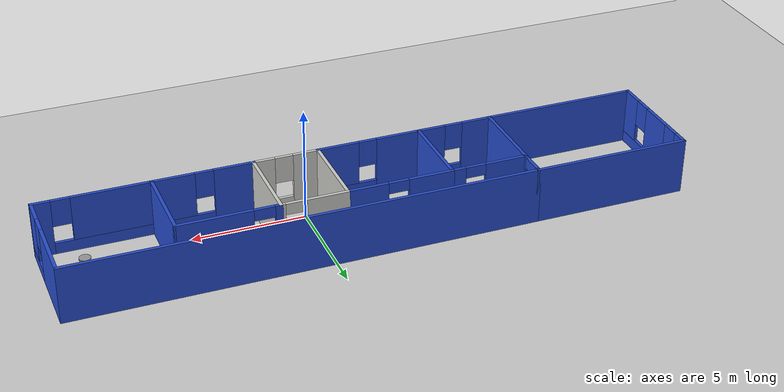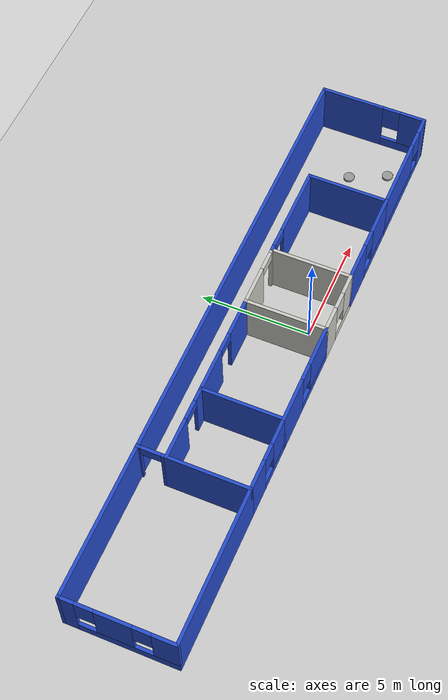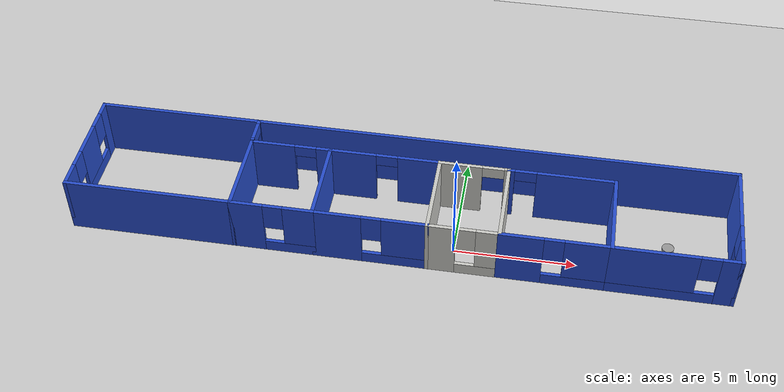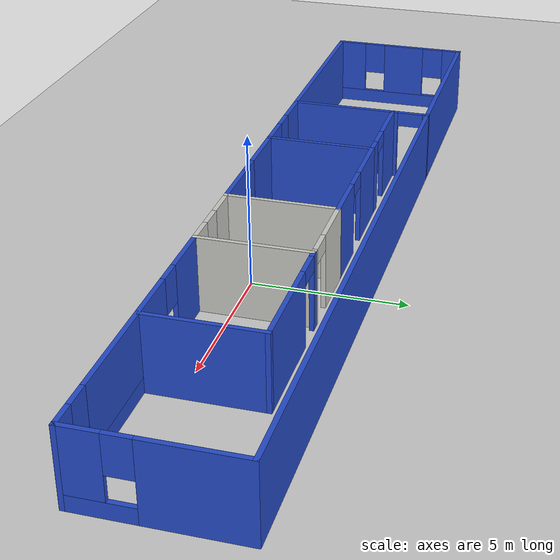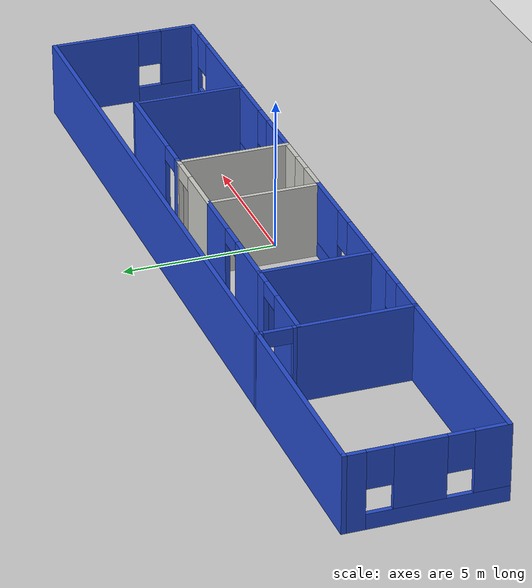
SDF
<sdf version="1.7">
 <world name="default">
  <plugin name="welcome_message" filename="libwelcome_message.so"/>
  <light name="sun" type="directional">
   <pose>0 0 10 0 -0 0</pose>
   <diffuse>0.8 0.8 0.8 1</diffuse>
   <specular>0.2 0.2 0.2 1</specular>
   <attenuation>
    <range>1000</range>
    <constant>0.9</constant>
    <linear>0.01</linear>
    <quadratic>0.001</quadratic>
   </attenuation>
   <direction>-0.5 0.1 -0.9</direction>
   <spot><inner_angle>0</inner_angle><outer_angle>0</outer_angle><falloff>0</falloff></spot>
  </light>
  <model name="ground_plane">
   <static>1</static>
   <link name="link">
    <collision name="collision">
     <geometry><plane><normal>0 0 1</normal><size>100 100</size></plane></geometry>
     <surface>
      <contact><collide_bitmask>65535</collide_bitmask></contact>
      <friction><ode><mu>100</mu><mu2>50</mu2></ode></friction>
     </surface>
    </collision>
    <visual name="visual">
     <cast_shadows>0</cast_shadows>
     <geometry><plane><normal>0 0 1</normal><size>100 100</size></plane></geometry>
     <material>
      <script><uri>file://media/materials/scripts/gazebo.material</uri><name>Gazebo/Grey</name></script>
     </material>
    </visual>
   </link>
  </model>
  <gravity>0 0 -9.8</gravity>
  <magnetic_field>6e-06 2.3e-05 -4.2e-05</magnetic_field>
  <atmosphere type="adiabatic"/>
  <physics type="ode">
   <max_step_size>0.001</max_step_size>
   <real_time_factor>1</real_time_factor>
   <real_time_update_rate>1000</real_time_update_rate>
  </physics>
  <scene><ambient>0.4 0.4 0.4 1</ambient><background>0.7 0.7 0.7 1</background><shadows>1</shadows></scene>
  <spherical_coordinates>
   <surface_model>EARTH_WGS84</surface_model>
   <latitude_deg>0</latitude_deg>
   <longitude_deg>0</longitude_deg>
   <elevation>0</elevation>
   <heading_deg>0</heading_deg>
  </spherical_coordinates>
  <model name="1147G">
   <pose>-2.2869 -0.25 0 0 -0 0</pose>
   <link name="Wall_11">
    <collision name="Wall_11_Collision">
     <geometry><box><size>7 0.15 2.5</size></box></geometry>
     <pose>0 0 1.25 0 -0 0</pose>
    </collision>
    <visual name="Wall_11_Visual">
     <pose>0 0 1.25 0 -0 0</pose>
     <geometry><box><size>7 0.15 2.5</size></box></geometry>
     <material>
      <script><uri>file://media/materials/scripts/gazebo.material</uri><name>Gazebo/Blue</name></script>
      <ambient>1 1 1 1</ambient>
     </material>
     <meta><layer>0</layer></meta>
    </visual>
    <pose>-10.05 4.0301 0 0 -0 0</pose>
   </link>
   <link name="Wall_14">
    <pose>-13.475 1.6051 0 0 -0 -1.5708</pose>
    <visual name="Wall_14_Visual_0">
     <pose>-2.13974 0 1.25 0 -0 0</pose>
     <geometry><box><size>0.720511 0.15 2.5</size></box></geometry>
     <material>
      <script><uri>file://media/materials/scripts/gazebo.material</uri><name>Gazebo/Blue</name></script>
      <ambient>1 1 1 1</ambient>
     </material>
     <meta><layer>0</layer></meta>
    </visual>
    <collision name="Wall_14_Collision_0">
     <geometry><box><size>0.720511 0.15 2.5</size></box></geometry>
     <pose>-2.13974 0 1.25 0 -0 0</pose>
    </collision>
    <visual name="Wall_14_Visual_1">
     <pose>0.360256 0 0.25 0 -0 0</pose>
     <geometry><box><size>4.27949 0.15 0.5</size></box></geometry>
     <material>
      <script><uri>file://media/materials/scripts/gazebo.material</uri><name>Gazebo/Blue</name></script>
      <ambient>1 1 1 1</ambient>
     </material>
     <meta><layer>0</layer></meta>
    </visual>
    <collision name="Wall_14_Collision_1">
     <geometry><box><size>4.27949 0.15 0.5</size></box></geometry>
     <pose>0.360256 0 0.25 0 -0 0</pose>
    </collision>
    <visual name="Wall_14_Visual_2">
     <pose>-0.192788 0 1.5 0 -0 0</pose>
     <geometry><box><size>1.5734 0.15 2</size></box></geometry>
     <material>
      <script><uri>file://media/materials/scripts/gazebo.material</uri><name>Gazebo/Blue</name></script>
      <ambient>1 1 1 1</ambient>
     </material>
     <meta><layer>0</layer></meta>
    </visual>
    <collision name="Wall_14_Collision_2">
     <geometry><box><size>1.5734 0.15 2</size></box></geometry>
     <pose>-0.192788 0 1.5 0 -0 0</pose>
    </collision>
    <visual name="Wall_14_Visual_3">
     <pose>1.94696 0 1.5 0 -0 0</pose>
     <geometry><box><size>1.10609 0.15 2</size></box></geometry>
     <material>
      <script><uri>file://media/materials/scripts/gazebo.material</uri><name>Gazebo/Blue</name></script>
      <ambient>1 1 1 1</ambient>
     </material>
     <meta><layer>0</layer></meta>
    </visual>
    <collision name="Wall_14_Collision_3">
     <geometry><box><size>1.10609 0.15 2</size></box></geometry>
     <pose>1.94696 0 1.5 0 -0 0</pose>
    </collision>
    <visual name="Wall_14_Visual_4">
     <pose>-1.37949 0 1.9 0 -0 0</pose>
     <geometry><box><size>0.8 0.15 1.2</size></box></geometry>
     <material>
      <script><uri>file://media/materials/scripts/gazebo.material</uri><name>Gazebo/Blue</name></script>
      <ambient>1 1 1 1</ambient>
     </material>
     <meta><layer>0</layer></meta>
    </visual>
    <collision name="Wall_14_Collision_4">
     <geometry><box><size>0.8 0.15 1.2</size></box></geometry>
     <pose>-1.37949 0 1.9 0 -0 0</pose>
    </collision>
    <visual name="Wall_14_Visual_5">
     <pose>0.993912 0 1.9 0 -0 0</pose>
     <geometry><box><size>0.8 0.15 1.2</size></box></geometry>
     <material>
      <script><uri>file://media/materials/scripts/gazebo.material</uri><name>Gazebo/Blue</name></script>
      <ambient>1 1 1 1</ambient>
     </material>
     <meta><layer>0</layer></meta>
    </visual>
    <collision name="Wall_14_Collision_5">
     <geometry><box><size>0.8 0.15 1.2</size></box></geometry>
     <pose>0.993912 0 1.9 0 -0 0</pose>
    </collision>
   </link>
   <link name="Wall_15">
    <collision name="Wall_15_Collision">
     <geometry><box><size>7 0.15 2.5</size></box></geometry>
     <pose>0 0 1.25 0 -0 0</pose>
    </collision>
    <visual name="Wall_15_Visual">
     <pose>0 0 1.25 0 -0 0</pose>
     <geometry><box><size>7 0.15 2.5</size></box></geometry>
     <material>
      <script><uri>file://media/materials/scripts/gazebo.material</uri><name>Gazebo/Blue</name></script>
      <ambient>1 1 1 1</ambient>
     </material>
     <meta><layer>0</layer></meta>
    </visual>
    <pose>-10.05 -0.819903 0 0 -0 0</pose>
   </link>
   <link name="Wall_16">
    <collision name="Wall_16_Collision">
     <geometry><box><size>3.75 0.15 2.5</size></box></geometry>
     <pose>0 0 1.25 0 -0 0</pose>
    </collision>
    <visual name="Wall_16_Visual">
     <pose>0 0 1.25 0 -0 0</pose>
     <geometry><box><size>3.75 0.15 2.5</size></box></geometry>
     <material>
      <script><uri>file://media/materials/scripts/gazebo.material</uri><name>Gazebo/Blue</name></script>
      <ambient>1 1 1 1</ambient>
     </material>
     <meta><layer>0</layer></meta>
    </visual>
    <pose>-6.625 0.980097 0 0 -0 1.5708</pose>
   </link>
   <link name="Wall_18">
    <pose>-4.95 -0.819903 0 0 -0 0</pose>
    <visual name="Wall_18_Visual_0">
     <pose>-1.04538 0 1.25 0 -0 0</pose>
     <geometry><box><size>1.40924 0.15 2.5</size></box></geometry>
     <material>
      <script><uri>file://media/materials/scripts/gazebo.material</uri><name>Gazebo/Blue</name></script>
      <ambient>1 1 1 1</ambient>
     </material>
     <meta><layer>0</layer></meta>
    </visual>
    <collision name="Wall_18_Collision_0">
     <geometry><box><size>1.40924 0.15 2.5</size></box></geometry>
     <pose>-1.04538 0 1.25 0 -0 0</pose>
    </collision>
    <visual name="Wall_18_Visual_1">
     <pose>0.704619 0 0.25 0 -0 0</pose>
     <geometry><box><size>2.09076 0.15 0.5</size></box></geometry>
     <material>
      <script><uri>file://media/materials/scripts/gazebo.material</uri><name>Gazebo/Blue</name></script>
      <ambient>1 1 1 1</ambient>
     </material>
     <meta><layer>0</layer></meta>
    </visual>
    <collision name="Wall_18_Collision_1">
     <geometry><box><size>2.09076 0.15 0.5</size></box></geometry>
     <pose>0.704619 0 0.25 0 -0 0</pose>
    </collision>
    <visual name="Wall_18_Visual_2">
     <pose>1.10462 0 1.5 0 -0 0</pose>
     <geometry><box><size>1.29076 0.15 2</size></box></geometry>
     <material>
      <script><uri>file://media/materials/scripts/gazebo.material</uri><name>Gazebo/Blue</name></script>
      <ambient>1 1 1 1</ambient>
     </material>
     <meta><layer>0</layer></meta>
    </visual>
    <collision name="Wall_18_Collision_2">
     <geometry><box><size>1.29076 0.15 2</size></box></geometry>
     <pose>1.10462 0 1.5 0 -0 0</pose>
    </collision>
    <visual name="Wall_18_Visual_3">
     <pose>0.059238 0 1.9 0 -0 0</pose>
     <geometry><box><size>0.8 0.15 1.2</size></box></geometry>
     <material>
      <script><uri>file://media/materials/scripts/gazebo.material</uri><name>Gazebo/Blue</name></script>
      <ambient>1 1 1 1</ambient>
     </material>
     <meta><layer>0</layer></meta>
    </visual>
    <collision name="Wall_18_Collision_3">
     <geometry><box><size>0.8 0.15 1.2</size></box></geometry>
     <pose>0.059238 0 1.9 0 -0 0</pose>
    </collision>
   </link>
   <link name="Wall_19">
    <collision name="Wall_19_Collision">
     <geometry><box><size>3.75 0.15 2.5</size></box></geometry>
     <pose>0 0 1.25 0 -0 0</pose>
    </collision>
    <visual name="Wall_19_Visual">
     <pose>0 0 1.25 0 -0 0</pose>
     <geometry><box><size>3.75 0.15 2.5</size></box></geometry>
     <material>
      <script><uri>file://media/materials/scripts/gazebo.material</uri><name>Gazebo/Blue</name></script>
      <ambient>1 1 1 1</ambient>
     </material>
     <meta><layer>0</layer></meta>
    </visual>
    <pose>-3.275 0.980097 0 0 -0 1.5708</pose>
   </link>
   <link name="Wall_21">
    <pose>-0.975 -0.819903 0 0 -0 0</pose>
    <visual name="Wall_21_Visual_0">
     <pose>-1.35414 0 1.25 0 -0 0</pose>
     <geometry><box><size>2.04173 0.15 2.5</size></box></geometry>
     <material>
      <script><uri>file://media/materials/scripts/gazebo.material</uri><name>Gazebo/Blue</name></script>
      <ambient>1 1 1 1</ambient>
     </material>
     <meta><layer>0</layer></meta>
    </visual>
    <collision name="Wall_21_Collision_0">
     <geometry><box><size>2.04173 0.15 2.5</size></box></geometry>
     <pose>-1.35414 0 1.25 0 -0 0</pose>
    </collision>
    <visual name="Wall_21_Visual_1">
     <pose>1.02086 0 0.25 0 -0 0</pose>
     <geometry><box><size>2.70827 0.15 0.5</size></box></geometry>
     <material>
      <script><uri>file://media/materials/scripts/gazebo.material</uri><name>Gazebo/Blue</name></script>
      <ambient>1 1 1 1</ambient>
     </material>
     <meta><layer>0</layer></meta>
    </visual>
    <collision name="Wall_21_Collision_1">
     <geometry><box><size>2.70827 0.15 0.5</size></box></geometry>
     <pose>1.02086 0 0.25 0 -0 0</pose>
    </collision>
    <visual name="Wall_21_Visual_2">
     <pose>1.42086 0 1.5 0 -0 0</pose>
     <geometry><box><size>1.90827 0.15 2</size></box></geometry>
     <material>
      <script><uri>file://media/materials/scripts/gazebo.material</uri><name>Gazebo/Blue</name></script>
      <ambient>1 1 1 1</ambient>
     </material>
     <meta><layer>0</layer></meta>
    </visual>
    <collision name="Wall_21_Collision_2">
     <geometry><box><size>1.90827 0.15 2</size></box></geometry>
     <pose>1.42086 0 1.5 0 -0 0</pose>
    </collision>
    <visual name="Wall_21_Visual_3">
     <pose>0.066725 0 1.9 0 -0 0</pose>
     <geometry><box><size>0.8 0.15 1.2</size></box></geometry>
     <material>
      <script><uri>file://media/materials/scripts/gazebo.material</uri><name>Gazebo/Blue</name></script>
      <ambient>1 1 1 1</ambient>
     </material>
     <meta><layer>0</layer></meta>
    </visual>
    <collision name="Wall_21_Collision_3">
     <geometry><box><size>0.8 0.15 1.2</size></box></geometry>
     <pose>0.066725 0 1.9 0 -0 0</pose>
    </collision>
   </link>
   <link name="Wall_22">
    <collision name="Wall_22_Collision">
     <geometry><box><size>3.75 0.15 2.5</size></box></geometry>
     <pose>0 0 1.25 0 -0 0</pose>
    </collision>
    <visual name="Wall_22_Visual">
     <pose>0 0 1.25 0 -0 0</pose>
     <geometry><box><size>3.75 0.15 2.5</size></box></geometry>
     <material>
      <script><uri>file://media/materials/scripts/gazebo.material</uri><name>Gazebo/CeilingTiled</name></script>
      <ambient>1 1 1 1</ambient>
     </material>
     <meta><layer>0</layer></meta>
    </visual>
    <pose>1.325 0.980097 0 0 -0 1.5708</pose>
   </link>
   <link name="Wall_24">
    <pose>2.75 -0.819903 0 0 -0 0</pose>
    <visual name="Wall_24_Visual_0">
     <pose>-0.898519 0 1.25 0 -0 0</pose>
     <geometry><box><size>1.20296 0.15 2.5</size></box></geometry>
     <material>
      <script><uri>file://media/materials/scripts/gazebo.material</uri><name>Gazebo/CeilingTiled</name></script>
      <ambient>1 1 1 1</ambient>
     </material>
     <meta><layer>0</layer></meta>
    </visual>
    <collision name="Wall_24_Collision_0">
     <geometry><box><size>1.20296 0.15 2.5</size></box></geometry>
     <pose>-0.898519 0 1.25 0 -0 0</pose>
    </collision>
    <visual name="Wall_24_Visual_1">
     <pose>0.601481 0 0.25 0 -0 0</pose>
     <geometry><box><size>1.79704 0.15 0.5</size></box></geometry>
     <material>
      <script><uri>file://media/materials/scripts/gazebo.material</uri><name>Gazebo/CeilingTiled</name></script>
      <ambient>1 1 1 1</ambient>
     </material>
     <meta><layer>0</layer></meta>
    </visual>
    <collision name="Wall_24_Collision_1">
     <geometry><box><size>1.79704 0.15 0.5</size></box></geometry>
     <pose>0.601481 0 0.25 0 -0 0</pose>
    </collision>
    <visual name="Wall_24_Visual_2">
     <pose>1.00148 0 1.5 0 -0 0</pose>
     <geometry><box><size>0.997037 0.15 2</size></box></geometry>
     <material>
      <script><uri>file://media/materials/scripts/gazebo.material</uri><name>Gazebo/CeilingTiled</name></script>
      <ambient>1 1 1 1</ambient>
     </material>
     <meta><layer>0</layer></meta>
    </visual>
    <collision name="Wall_24_Collision_2">
     <geometry><box><size>0.997037 0.15 2</size></box></geometry>
     <pose>1.00148 0 1.5 0 -0 0</pose>
    </collision>
    <visual name="Wall_24_Visual_3">
     <pose>0.102963 0 1.9 0 -0 0</pose>
     <geometry><box><size>0.8 0.15 1.2</size></box></geometry>
     <material>
      <script><uri>file://media/materials/scripts/gazebo.material</uri><name>Gazebo/CeilingTiled</name></script>
      <ambient>1 1 1 1</ambient>
     </material>
     <meta><layer>0</layer></meta>
    </visual>
    <collision name="Wall_24_Collision_3">
     <geometry><box><size>0.8 0.15 1.2</size></box></geometry>
     <pose>0.102963 0 1.9 0 -0 0</pose>
    </collision>
   </link>
   <link name="Wall_25">
    <collision name="Wall_25_Collision">
     <geometry><box><size>3.75 0.15 2.5</size></box></geometry>
     <pose>0 0 1.25 0 -0 0</pose>
    </collision>
    <visual name="Wall_25_Visual">
     <pose>0 0 1.25 0 -0 0</pose>
     <geometry><box><size>3.75 0.15 2.5</size></box></geometry>
     <material>
      <script><uri>file://media/materials/scripts/gazebo.material</uri><name>Gazebo/CeilingTiled</name></script>
      <ambient>1 1 1 1</ambient>
     </material>
     <meta><layer>0</layer></meta>
    </visual>
    <pose>4.175 0.980097 0 0 -0 1.5708</pose>
   </link>
   <link name="Wall_27">
    <pose>6.35 -0.819903 0 0 -0 0</pose>
    <visual name="Wall_27_Visual_0">
     <pose>-1.34375 0 1.25 0 -0 0</pose>
     <geometry><box><size>1.8125 0.15 2.5</size></box></geometry>
     <material>
      <script><uri>file://media/materials/scripts/gazebo.material</uri><name>Gazebo/Blue</name></script>
      <ambient>1 1 1 1</ambient>
     </material>
     <meta><layer>0</layer></meta>
    </visual>
    <collision name="Wall_27_Collision_0">
     <geometry><box><size>1.8125 0.15 2.5</size></box></geometry>
     <pose>-1.34375 0 1.25 0 -0 0</pose>
    </collision>
    <visual name="Wall_27_Visual_1">
     <pose>0.906249 0 0.25 0 -0 0</pose>
     <geometry><box><size>2.6875 0.15 0.5</size></box></geometry>
     <material>
      <script><uri>file://media/materials/scripts/gazebo.material</uri><name>Gazebo/Blue</name></script>
      <ambient>1 1 1 1</ambient>
     </material>
     <meta><layer>0</layer></meta>
    </visual>
    <collision name="Wall_27_Collision_1">
     <geometry><box><size>2.6875 0.15 0.5</size></box></geometry>
     <pose>0.906249 0 0.25 0 -0 0</pose>
    </collision>
    <visual name="Wall_27_Visual_2">
     <pose>1.30625 0 1.5 0 -0 0</pose>
     <geometry><box><size>1.8875 0.15 2</size></box></geometry>
     <material>
      <script><uri>file://media/materials/scripts/gazebo.material</uri><name>Gazebo/Blue</name></script>
      <ambient>1 1 1 1</ambient>
     </material>
     <meta><layer>0</layer></meta>
    </visual>
    <collision name="Wall_27_Collision_2">
     <geometry><box><size>1.8875 0.15 2</size></box></geometry>
     <pose>1.30625 0 1.5 0 -0 0</pose>
    </collision>
    <visual name="Wall_27_Visual_3">
     <pose>-0.037502 0 1.9 0 -0 0</pose>
     <geometry><box><size>0.8 0.15 1.2</size></box></geometry>
     <material>
      <script><uri>file://media/materials/scripts/gazebo.material</uri><name>Gazebo/Blue</name></script>
      <ambient>1 1 1 1</ambient>
     </material>
     <meta><layer>0</layer></meta>
    </visual>
    <collision name="Wall_27_Collision_3">
     <geometry><box><size>0.8 0.15 1.2</size></box></geometry>
     <pose>-0.037502 0 1.9 0 -0 0</pose>
    </collision>
   </link>
   <link name="Wall_28">
    <collision name="Wall_28_Collision">
     <geometry><box><size>3.75 0.15 2.5</size></box></geometry>
     <pose>0 0 1.25 0 -0 0</pose>
    </collision>
    <visual name="Wall_28_Visual">
     <pose>0 0 1.25 0 -0 0</pose>
     <geometry><box><size>3.75 0.15 2.5</size></box></geometry>
     <material>
      <script><uri>file://media/materials/scripts/gazebo.material</uri><name>Gazebo/Blue</name></script>
      <ambient>1 1 1 1</ambient>
     </material>
     <meta><layer>0</layer></meta>
    </visual>
    <pose>8.525 0.980097 0 0 -0 1.5708</pose>
   </link>
   <link name="Wall_30">
    <pose>6.35 2.7801 0 0 -0 3.14159</pose>
    <visual name="Wall_30_Visual_0">
     <pose>-0.60716 0 1.25 0 -0 0</pose>
     <geometry><box><size>3.28568 0.15 2.5</size></box></geometry>
     <material>
      <script><uri>file://media/materials/scripts/gazebo.material</uri><name>Gazebo/Blue</name></script>
      <ambient>1 1 1 1</ambient>
     </material>
     <meta><layer>0</layer></meta>
    </visual>
    <collision name="Wall_30_Collision_0">
     <geometry><box><size>3.28568 0.15 2.5</size></box></geometry>
     <pose>-0.60716 0 1.25 0 -0 0</pose>
    </collision>
    <visual name="Wall_30_Visual_1">
     <pose>2.09284 0 1.25 0 -0 0</pose>
     <geometry><box><size>0.31432 0.15 2.5</size></box></geometry>
     <material>
      <script><uri>file://media/materials/scripts/gazebo.material</uri><name>Gazebo/Blue</name></script>
      <ambient>1 1 1 1</ambient>
     </material>
     <meta><layer>0</layer></meta>
    </visual>
    <collision name="Wall_30_Collision_1">
     <geometry><box><size>0.31432 0.15 2.5</size></box></geometry>
     <pose>2.09284 0 1.25 0 -0 0</pose>
    </collision>
    <visual name="Wall_30_Visual_2">
     <pose>1.48568 0 2.25 0 -0 0</pose>
     <geometry><box><size>0.9 0.15 0.5</size></box></geometry>
     <material>
      <script><uri>file://media/materials/scripts/gazebo.material</uri><name>Gazebo/Blue</name></script>
      <ambient>1 1 1 1</ambient>
     </material>
     <meta><layer>0</layer></meta>
    </visual>
    <collision name="Wall_30_Collision_2">
     <geometry><box><size>0.9 0.15 0.5</size></box></geometry>
     <pose>1.48568 0 2.25 0 -0 0</pose>
    </collision>
   </link>
   <link name="Wall_31">
    <pose>2.75 2.7801 0 0 -0 3.14159</pose>
    <visual name="Wall_31_Visual_0">
     <pose>-1.36841 0 1.25 0 -0 0</pose>
     <geometry><box><size>0.263175 0.15 2.5</size></box></geometry>
     <material>
      <script><uri>file://media/materials/scripts/gazebo.material</uri><name>Gazebo/CeilingTiled</name></script>
      <ambient>1 1 1 1</ambient>
     </material>
     <meta><layer>0</layer></meta>
    </visual>
    <collision name="Wall_31_Collision_0">
     <geometry><box><size>0.263175 0.15 2.5</size></box></geometry>
     <pose>-1.36841 0 1.25 0 -0 0</pose>
    </collision>
    <visual name="Wall_31_Visual_1">
     <pose>0.581588 0 1.25 0 -0 0</pose>
     <geometry><box><size>1.83682 0.15 2.5</size></box></geometry>
     <material>
      <script><uri>file://media/materials/scripts/gazebo.material</uri><name>Gazebo/CeilingTiled</name></script>
      <ambient>1 1 1 1</ambient>
     </material>
     <meta><layer>0</layer></meta>
    </visual>
    <collision name="Wall_31_Collision_1">
     <geometry><box><size>1.83682 0.15 2.5</size></box></geometry>
     <pose>0.581588 0 1.25 0 -0 0</pose>
    </collision>
    <visual name="Wall_31_Visual_2">
     <pose>-0.786825 0 2.25 0 -0 0</pose>
     <geometry><box><size>0.9 0.15 0.5</size></box></geometry>
     <material>
      <script><uri>file://media/materials/scripts/gazebo.material</uri><name>Gazebo/CeilingTiled</name></script>
      <ambient>1 1 1 1</ambient>
     </material>
     <meta><layer>0</layer></meta>
    </visual>
    <collision name="Wall_31_Collision_2">
     <geometry><box><size>0.9 0.15 0.5</size></box></geometry>
     <pose>-0.786825 0 2.25 0 -0 0</pose>
    </collision>
   </link>
   <link name="Wall_32">
    <pose>-0.975 2.7801 0 0 -0 3.14159</pose>
    <visual name="Wall_32_Visual_0">
     <pose>-1.45592 0 1.25 0 -0 0</pose>
     <geometry><box><size>1.83816 0.15 2.5</size></box></geometry>
     <material>
      <script><uri>file://media/materials/scripts/gazebo.material</uri><name>Gazebo/Blue</name></script>
      <ambient>1 1 1 1</ambient>
     </material>
     <meta><layer>0</layer></meta>
    </visual>
    <collision name="Wall_32_Collision_0">
     <geometry><box><size>1.83816 0.15 2.5</size></box></geometry>
     <pose>-1.45592 0 1.25 0 -0 0</pose>
    </collision>
    <visual name="Wall_32_Visual_1">
     <pose>1.36908 0 1.25 0 -0 0</pose>
     <geometry><box><size>2.01184 0.15 2.5</size></box></geometry>
     <material>
      <script><uri>file://media/materials/scripts/gazebo.material</uri><name>Gazebo/Blue</name></script>
      <ambient>1 1 1 1</ambient>
     </material>
     <meta><layer>0</layer></meta>
    </visual>
    <collision name="Wall_32_Collision_1">
     <geometry><box><size>2.01184 0.15 2.5</size></box></geometry>
     <pose>1.36908 0 1.25 0 -0 0</pose>
    </collision>
    <visual name="Wall_32_Visual_2">
     <pose>-0.086839 0 2.25 0 -0 0</pose>
     <geometry><box><size>0.9 0.15 0.5</size></box></geometry>
     <material>
      <script><uri>file://media/materials/scripts/gazebo.material</uri><name>Gazebo/Blue</name></script>
      <ambient>1 1 1 1</ambient>
     </material>
     <meta><layer>0</layer></meta>
    </visual>
    <collision name="Wall_32_Collision_2">
     <geometry><box><size>0.9 0.15 0.5</size></box></geometry>
     <pose>-0.086839 0 2.25 0 -0 0</pose>
    </collision>
   </link>
   <link name="Wall_33">
    <pose>-4.95 2.7801 0 0 -0 3.14159</pose>
    <visual name="Wall_33_Visual_0">
     <pose>-1.41121 0 1.25 0 -0 0</pose>
     <geometry><box><size>0.677582 0.15 2.5</size></box></geometry>
     <material>
      <script><uri>file://media/materials/scripts/gazebo.material</uri><name>Gazebo/Blue</name></script>
      <ambient>1 1 1 1</ambient>
     </material>
     <meta><layer>0</layer></meta>
    </visual>
    <collision name="Wall_33_Collision_0">
     <geometry><box><size>0.677582 0.15 2.5</size></box></geometry>
     <pose>-1.41121 0 1.25 0 -0 0</pose>
    </collision>
    <visual name="Wall_33_Visual_1">
     <pose>0.788791 0 1.25 0 -0 0</pose>
     <geometry><box><size>1.92242 0.15 2.5</size></box></geometry>
     <material>
      <script><uri>file://media/materials/scripts/gazebo.material</uri><name>Gazebo/Blue</name></script>
      <ambient>1 1 1 1</ambient>
     </material>
     <meta><layer>0</layer></meta>
    </visual>
    <collision name="Wall_33_Collision_1">
     <geometry><box><size>1.92242 0.15 2.5</size></box></geometry>
     <pose>0.788791 0 1.25 0 -0 0</pose>
    </collision>
    <visual name="Wall_33_Visual_2">
     <pose>-0.622418 0 2.25 0 -0 0</pose>
     <geometry><box><size>0.9 0.15 0.5</size></box></geometry>
     <material>
      <script><uri>file://media/materials/scripts/gazebo.material</uri><name>Gazebo/Blue</name></script>
      <ambient>1 1 1 1</ambient>
     </material>
     <meta><layer>0</layer></meta>
    </visual>
    <collision name="Wall_33_Collision_2">
     <geometry><box><size>0.9 0.15 0.5</size></box></geometry>
     <pose>-0.622418 0 2.25 0 -0 0</pose>
    </collision>
   </link>
   <link name="Wall_34">
    <pose>-6.625 3.4051 0 0 -0 1.5708</pose>
    <visual name="Wall_34_Visual_0">
     <pose>-0.564006 0 1.25 0 -0 0</pose>
     <geometry><box><size>0.271987 0.15 2.5</size></box></geometry>
     <material>
      <script><uri>file://media/materials/scripts/gazebo.material</uri><name>Gazebo/Blue</name></script>
      <ambient>1 1 1 1</ambient>
     </material>
     <meta><layer>0</layer></meta>
    </visual>
    <collision name="Wall_34_Collision_0">
     <geometry><box><size>0.271987 0.15 2.5</size></box></geometry>
     <pose>-0.564006 0 1.25 0 -0 0</pose>
    </collision>
    <visual name="Wall_34_Visual_1">
     <pose>0.585994 0 1.25 0 -0 0</pose>
     <geometry><box><size>0.228013 0.15 2.5</size></box></geometry>
     <material>
      <script><uri>file://media/materials/scripts/gazebo.material</uri><name>Gazebo/Blue</name></script>
      <ambient>1 1 1 1</ambient>
     </material>
     <meta><layer>0</layer></meta>
    </visual>
    <collision name="Wall_34_Collision_1">
     <geometry><box><size>0.228013 0.15 2.5</size></box></geometry>
     <pose>0.585994 0 1.25 0 -0 0</pose>
    </collision>
    <visual name="Wall_34_Visual_2">
     <pose>0.021987 0 2.25 0 -0 0</pose>
     <geometry><box><size>0.9 0.15 0.5</size></box></geometry>
     <material>
      <script><uri>file://media/materials/scripts/gazebo.material</uri><name>Gazebo/Blue</name></script>
      <ambient>1 1 1 1</ambient>
     </material>
     <meta><layer>0</layer></meta>
    </visual>
    <collision name="Wall_34_Collision_2">
     <geometry><box><size>0.9 0.15 0.5</size></box></geometry>
     <pose>0.021987 0 2.25 0 -0 0</pose>
    </collision>
   </link>
   <link name="Wall_35">
    <collision name="Wall_35_Collision">
     <geometry><box><size>20.25 0.15 2.5</size></box></geometry>
     <pose>0 0 1.25 0 -0 0</pose>
    </collision>
    <visual name="Wall_35_Visual">
     <pose>0 0 1.25 0 -0 0</pose>
     <geometry><box><size>20.25 0.15 2.5</size></box></geometry>
     <material>
      <script><uri>file://media/materials/scripts/gazebo.material</uri><name>Gazebo/Blue</name></script>
      <ambient>1 1 1 1</ambient>
     </material>
     <meta><layer>0</layer></meta>
    </visual>
    <pose>3.425 4.0301 0 0 -0 0</pose>
   </link>
   <link name="Wall_36">
    <pose>13.475 1.6051 0 0 -0 -1.5708</pose>
    <visual name="Wall_36_Visual_0">
     <pose>-1.01338 0 1.25 0 -0 0</pose>
     <geometry><box><size>2.97323 0.15 2.5</size></box></geometry>
     <material>
      <script><uri>file://media/materials/scripts/gazebo.material</uri><name>Gazebo/Blue</name></script>
      <ambient>1 1 1 1</ambient>
     </material>
     <meta><layer>0</layer></meta>
    </visual>
    <collision name="Wall_36_Collision_0">
     <geometry><box><size>2.97323 0.15 2.5</size></box></geometry>
     <pose>-1.01338 0 1.25 0 -0 0</pose>
    </collision>
    <visual name="Wall_36_Visual_1">
     <pose>1.48662 0 0.25 0 -0 0</pose>
     <geometry><box><size>2.02677 0.15 0.5</size></box></geometry>
     <material>
      <script><uri>file://media/materials/scripts/gazebo.material</uri><name>Gazebo/Blue</name></script>
      <ambient>1 1 1 1</ambient>
     </material>
     <meta><layer>0</layer></meta>
    </visual>
    <collision name="Wall_36_Collision_1">
     <geometry><box><size>2.02677 0.15 0.5</size></box></geometry>
     <pose>1.48662 0 0.25 0 -0 0</pose>
    </collision>
    <visual name="Wall_36_Visual_2">
     <pose>1.88661 0 1.5 0 -0 0</pose>
     <geometry><box><size>1.22677 0.15 2</size></box></geometry>
     <material>
      <script><uri>file://media/materials/scripts/gazebo.material</uri><name>Gazebo/Blue</name></script>
      <ambient>1 1 1 1</ambient>
     </material>
     <meta><layer>0</layer></meta>
    </visual>
    <collision name="Wall_36_Collision_2">
     <geometry><box><size>1.22677 0.15 2</size></box></geometry>
     <pose>1.88661 0 1.5 0 -0 0</pose>
    </collision>
    <visual name="Wall_36_Visual_3">
     <pose>0.873231 0 1.9 0 -0 0</pose>
     <geometry><box><size>0.8 0.15 1.2</size></box></geometry>
     <material>
      <script><uri>file://media/materials/scripts/gazebo.material</uri><name>Gazebo/Blue</name></script>
      <ambient>1 1 1 1</ambient>
     </material>
     <meta><layer>0</layer></meta>
    </visual>
    <collision name="Wall_36_Collision_3">
     <geometry><box><size>0.8 0.15 1.2</size></box></geometry>
     <pose>0.873231 0 1.9 0 -0 0</pose>
    </collision>
   </link>
   <link name="Wall_37">
    <pose>11 -0.819903 0 0 -0 -3.14159</pose>
    <visual name="Wall_37_Visual_0">
     <pose>-2.12817 0 1.25 0 -0 0</pose>
     <geometry><box><size>0.843658 0.15 2.5</size></box></geometry>
     <material>
      <script><uri>file://media/materials/scripts/gazebo.material</uri><name>Gazebo/Blue</name></script>
      <ambient>1 1 1 1</ambient>
     </material>
     <meta><layer>0</layer></meta>
    </visual>
    <collision name="Wall_37_Collision_0">
     <geometry><box><size>0.843658 0.15 2.5</size></box></geometry>
     <pose>-2.12817 0 1.25 0 -0 0</pose>
    </collision>
    <visual name="Wall_37_Visual_1">
     <pose>0.421829 0 0.25 0 -0 0</pose>
     <geometry><box><size>4.25634 0.15 0.5</size></box></geometry>
     <material>
      <script><uri>file://media/materials/scripts/gazebo.material</uri><name>Gazebo/Blue</name></script>
      <ambient>1 1 1 1</ambient>
     </material>
     <meta><layer>0</layer></meta>
    </visual>
    <collision name="Wall_37_Collision_1">
     <geometry><box><size>4.25634 0.15 0.5</size></box></geometry>
     <pose>0.421829 0 0.25 0 -0 0</pose>
    </collision>
    <visual name="Wall_37_Visual_2">
     <pose>0.821829 0 1.5 0 -0 0</pose>
     <geometry><box><size>3.45634 0.15 2</size></box></geometry>
     <material>
      <script><uri>file://media/materials/scripts/gazebo.material</uri><name>Gazebo/Blue</name></script>
      <ambient>1 1 1 1</ambient>
     </material>
     <meta><layer>0</layer></meta>
    </visual>
    <collision name="Wall_37_Collision_2">
     <geometry><box><size>3.45634 0.15 2</size></box></geometry>
     <pose>0.821829 0 1.5 0 -0 0</pose>
    </collision>
    <visual name="Wall_37_Visual_3">
     <pose>-1.30634 0 1.9 0 -0 0</pose>
     <geometry><box><size>0.8 0.15 1.2</size></box></geometry>
     <material>
      <script><uri>file://media/materials/scripts/gazebo.material</uri><name>Gazebo/Blue</name></script>
      <ambient>1 1 1 1</ambient>
     </material>
     <meta><layer>0</layer></meta>
    </visual>
    <collision name="Wall_37_Collision_3">
     <geometry><box><size>0.8 0.15 1.2</size></box></geometry>
     <pose>-1.30634 0 1.9 0 -0 0</pose>
    </collision>
   </link>
   <static>1</static>
  </model>
  <model name="VacuumRobot">
   <link name="link_0">
    <inertial>
     <mass>0.604268</mass>
     <inertia>
      <ixx>0.0770601</ixx>
      <ixy>0</ixy>
      <ixz>0</ixz>
      <iyy>0.0770601</iyy>
      <iyz>0</iyz>
      <izz>0.144007</izz>
     </inertia>
    </inertial>
    <pose>-0.0175 -0.001845 0.0225 0 -0 0</pose>
    <visual name="visual">
     <geometry><cylinder><radius>0.25</radius><length>0.1</length></cylinder></geometry>
     <material>
      <lighting>1</lighting>
      <script><uri>file://media/materials/scripts/gazebo.material</uri><name>Gazebo/Grey</name></script>
      <shader type="pixel"><normal_map>__default__</normal_map></shader>
      <ambient>0.3 0.3 0.3 1</ambient>
      <diffuse>0.7 0.7 0.7 1</diffuse>
      <specular>0.01 0.01 0.01 1</specular>
      <emissive>0 0 0 1</emissive>
     </material>
    </visual>
    <collision name="collision">
     <geometry><cylinder><radius>0.25</radius><length>0.1</length></cylinder></geometry>
     <surface>
      <friction>
       <ode><mu>1</mu><mu2>1</mu2><fdir1>0 0 0</fdir1><slip1>0</slip1><slip2>0</slip2></ode>
       <torsional>
        <coefficient>1</coefficient>
        <patch_radius>0</patch_radius>
        <surface_radius>0</surface_radius>
        <use_patch_radius>1</use_patch_radius>
        <ode><slip>0</slip></ode>
       </torsional>
      </friction>
      <bounce><restitution_coefficient>0</restitution_coefficient><threshold>1e+06</threshold></bounce>
      <contact>
       <collide_without_contact>0</collide_without_contact>
       <collide_without_contact_bitmask>1</collide_without_contact_bitmask>
       <collide_bitmask>1</collide_bitmask>
       <ode>
        <soft_cfm>0</soft_cfm>
        <soft_erp>0.2</soft_erp>
        <kp>1e+13</kp>
        <kd>1</kd>
        <max_vel>0.01</max_vel>
        <min_depth>0</min_depth>
       </ode>
       <bullet>
        <split_impulse>1</split_impulse>
        <split_impulse_penetration_threshold>-0.01</split_impulse_penetration_threshold>
        <soft_cfm>0</soft_cfm>
        <soft_erp>0.2</soft_erp>
        <kp>1e+13</kp>
        <kd>1</kd>
       </bullet>
      </contact>
     </surface>
    </collision>
   </link>
   <link name="link_1_clone">
    <inertial>
     <mass>1</mass>
     <inertia><ixx>0.145833</ixx><ixy>0</ixy><ixz>0</ixz><iyy>0.145833</iyy><iyz>0</iyz><izz>0.125</izz></inertia>
    </inertial>
    <pose>0.1125 -0.206835 0.0025 1.5707 -0 0</pose>
    <visual name="visual">
     <geometry><cylinder><radius>0.05</radius><length>0.03</length></cylinder></geometry>
     <material>
      <lighting>1</lighting>
      <script><uri>file://media/materials/scripts/gazebo.material</uri><name>Gazebo/Grey</name></script>
      <shader type="pixel"><normal_map>__default__</normal_map></shader>
      <ambient>0.3 0.3 0.3 1</ambient>
      <diffuse>0.7 0.7 0.7 1</diffuse>
      <specular>0.01 0.01 0.01 1</specular>
      <emissive>0 0 0 1</emissive>
     </material>
    </visual>
    <collision name="collision">
     <geometry><cylinder><radius>0.05</radius><length>0.03</length></cylinder></geometry>
     <surface>
      <friction>
       <ode><mu>1</mu><mu2>1</mu2><fdir1>0 0 0</fdir1><slip1>0</slip1><slip2>0</slip2></ode>
       <torsional>
        <coefficient>1</coefficient>
        <patch_radius>0</patch_radius>
        <surface_radius>0</surface_radius>
        <use_patch_radius>1</use_patch_radius>
        <ode><slip>0</slip></ode>
       </torsional>
      </friction>
      <bounce><restitution_coefficient>0</restitution_coefficient><threshold>1e+06</threshold></bounce>
      <contact>
       <collide_without_contact>0</collide_without_contact>
       <collide_without_contact_bitmask>1</collide_without_contact_bitmask>
       <collide_bitmask>1</collide_bitmask>
       <ode>
        <soft_cfm>0</soft_cfm>
        <soft_erp>0.2</soft_erp>
        <kp>1e+13</kp>
        <kd>1</kd>
        <max_vel>0.01</max_vel>
        <min_depth>0</min_depth>
       </ode>
       <bullet>
        <split_impulse>1</split_impulse>
        <split_impulse_penetration_threshold>-0.01</split_impulse_penetration_threshold>
        <soft_cfm>0</soft_cfm>
        <soft_erp>0.2</soft_erp>
        <kp>1e+13</kp>
        <kd>1</kd>
       </bullet>
      </contact>
     </surface>
    </collision>
   </link>
   <link name="link_1_clone_clone">
    <inertial>
     <mass>1</mass>
     <inertia><ixx>0.145833</ixx><ixy>0</ixy><ixz>0</ixz><iyy>0.145833</iyy><iyz>0</iyz><izz>0.125</izz></inertia>
    </inertial>
    <pose>0.1125 0.203155 0.0025 1.5707 -0 0</pose>
    <visual name="visual">
     <geometry><cylinder><radius>0.05</radius><length>0.03</length></cylinder></geometry>
     <material>
      <lighting>1</lighting>
      <script><uri>file://media/materials/scripts/gazebo.material</uri><name>Gazebo/Grey</name></script>
      <shader type="pixel"><normal_map>__default__</normal_map></shader>
      <ambient>0.3 0.3 0.3 1</ambient>
      <diffuse>0.7 0.7 0.7 1</diffuse>
      <specular>0.01 0.01 0.01 1</specular>
      <emissive>0 0 0 1</emissive>
     </material>
    </visual>
    <collision name="collision">
     <geometry><cylinder><radius>0.05</radius><length>0.03</length></cylinder></geometry>
     <surface>
      <friction>
       <ode><mu>1</mu><mu2>1</mu2><fdir1>0 0 0</fdir1><slip1>0</slip1><slip2>0</slip2></ode>
       <torsional>
        <coefficient>1</coefficient>
        <patch_radius>0</patch_radius>
        <surface_radius>0</surface_radius>
        <use_patch_radius>1</use_patch_radius>
        <ode><slip>0</slip></ode>
       </torsional>
      </friction>
      <bounce><restitution_coefficient>0</restitution_coefficient><threshold>1e+06</threshold></bounce>
      <contact>
       <collide_without_contact>0</collide_without_contact>
       <collide_without_contact_bitmask>1</collide_without_contact_bitmask>
       <collide_bitmask>1</collide_bitmask>
       <ode>
        <soft_cfm>0</soft_cfm>
        <soft_erp>0.2</soft_erp>
        <kp>1e+13</kp>
        <kd>1</kd>
        <max_vel>0.01</max_vel>
        <min_depth>0</min_depth>
       </ode>
       <bullet>
        <split_impulse>1</split_impulse>
        <split_impulse_penetration_threshold>-0.01</split_impulse_penetration_threshold>
        <soft_cfm>0</soft_cfm>
        <soft_erp>0.2</soft_erp>
        <kp>1e+13</kp>
        <kd>1</kd>
       </bullet>
      </contact>
     </surface>
    </collision>
   </link>
   <link name="link_2">
    <inertial>
     <mass>1</mass>
     <inertia><ixx>0.1</ixx><ixy>0</ixy><ixz>0</ixz><iyy>0.1</iyy><iyz>0</iyz><izz>0.1</izz></inertia>
    </inertial>
    <pose>-0.2075 0.005525 -0.0275 0 -0 0</pose>
    <visual name="visual">
     <geometry><sphere><radius>0.02</radius></sphere></geometry>
     <material>
      <lighting>1</lighting>
      <script><uri>file://media/materials/scripts/gazebo.material</uri><name>Gazebo/Grey</name></script>
      <shader type="pixel"><normal_map>__default__</normal_map></shader>
      <ambient>0.3 0.3 0.3 1</ambient>
      <diffuse>0.7 0.7 0.7 1</diffuse>
      <specular>0.01 0.01 0.01 1</specular>
      <emissive>0 0 0 1</emissive>
     </material>
    </visual>
    <collision name="collision">
     <geometry><sphere><radius>0.02</radius></sphere></geometry>
     <surface>
      <friction>
       <ode><mu>1</mu><mu2>1</mu2><fdir1>0 0 0</fdir1><slip1>0</slip1><slip2>0</slip2></ode>
       <torsional>
        <coefficient>1</coefficient>
        <patch_radius>0</patch_radius>
        <surface_radius>0</surface_radius>
        <use_patch_radius>1</use_patch_radius>
        <ode><slip>0</slip></ode>
       </torsional>
      </friction>
      <bounce><restitution_coefficient>0</restitution_coefficient><threshold>1e+06</threshold></bounce>
      <contact>
       <collide_without_contact>0</collide_without_contact>
       <collide_without_contact_bitmask>1</collide_without_contact_bitmask>
       <collide_bitmask>1</collide_bitmask>
       <ode>
        <soft_cfm>0</soft_cfm>
        <soft_erp>0.2</soft_erp>
        <kp>1e+13</kp>
        <kd>1</kd>
        <max_vel>0.01</max_vel>
        <min_depth>0</min_depth>
       </ode>
       <bullet>
        <split_impulse>1</split_impulse>
        <split_impulse_penetration_threshold>-0.01</split_impulse_penetration_threshold>
        <soft_cfm>0</soft_cfm>
        <soft_erp>0.2</soft_erp>
        <kp>1e+13</kp>
        <kd>1</kd>
       </bullet>
      </contact>
     </surface>
    </collision>
   </link>
   <joint name="link_0_JOINT_1" type="revolute">
    <parent>link_0</parent>
    <child>link_1_clone</child>
    <axis>
     <xyz>0 0 1</xyz>
     <limit>
      <lower>-1.79769e+308</lower>
      <upper>1.79769e+308</upper>
      <effort>-1</effort>
      <velocity>-1</velocity>
     </limit>
     <dynamics>
      <spring_reference>0</spring_reference>
      <spring_stiffness>0</spring_stiffness>
      <damping>0</damping>
     </dynamics>
    </axis>
    <physics>
     <ode><limit><cfm>0</cfm><erp>0.2</erp></limit><suspension><cfm>0</cfm><erp>0.2</erp></suspension></ode>
    </physics>
   </joint>
   <joint name="link_0_JOINT_2" type="revolute">
    <parent>link_0</parent>
    <child>link_1_clone_clone</child>
    <axis>
     <xyz>0 0 1</xyz>
     <limit>
      <lower>-1.79769e+308</lower>
      <upper>1.79769e+308</upper>
      <effort>-1</effort>
      <velocity>-1</velocity>
     </limit>
     <dynamics>
      <spring_reference>0</spring_reference>
      <spring_stiffness>0</spring_stiffness>
      <damping>0</damping>
     </dynamics>
    </axis>
    <physics>
     <ode><limit><cfm>0</cfm><erp>0.2</erp></limit><suspension><cfm>0</cfm><erp>0.2</erp></suspension></ode>
    </physics>
   </joint>
   <joint name="link_0_JOINT_3" type="ball">
    <parent>link_0</parent>
    <child>link_2</child>
    <physics>
     <ode><limit><cfm>0</cfm><erp>0.2</erp></limit><suspension><cfm>0</cfm><erp>0.2</erp></suspension></ode>
    </physics>
   </joint>
   <static>0</static>
   <pose>8.68744 1.47712 0.047501 3e-06 -6e-06 -0.009371</pose>
  </model>
  <model name="VacuumRobot_0">
   <link name="link_0">
    <inertial>
     <mass>0.604268</mass>
     <inertia>
      <ixx>0.0770601</ixx>
      <ixy>0</ixy>
      <ixz>0</ixz>
      <iyy>0.0770601</iyy>
      <iyz>0</iyz>
      <izz>0.144007</izz>
     </inertia>
    </inertial>
    <pose>-0.0175 -0.001845 0.0225 0 -0 0</pose>
    <visual name="visual">
     <geometry><cylinder><radius>0.25</radius><length>0.1</length></cylinder></geometry>
     <material>
      <lighting>1</lighting>
      <script><uri>file://media/materials/scripts/gazebo.material</uri><name>Gazebo/Grey</name></script>
      <shader type="pixel"><normal_map>__default__</normal_map></shader>
      <ambient>0.3 0.3 0.3 1</ambient>
      <diffuse>0.7 0.7 0.7 1</diffuse>
      <specular>0.01 0.01 0.01 1</specular>
      <emissive>0 0 0 1</emissive>
     </material>
    </visual>
    <collision name="collision">
     <geometry><cylinder><radius>0.25</radius><length>0.1</length></cylinder></geometry>
     <surface>
      <friction>
       <ode><mu>1</mu><mu2>1</mu2><fdir1>0 0 0</fdir1><slip1>0</slip1><slip2>0</slip2></ode>
       <torsional>
        <coefficient>1</coefficient>
        <patch_radius>0</patch_radius>
        <surface_radius>0</surface_radius>
        <use_patch_radius>1</use_patch_radius>
        <ode><slip>0</slip></ode>
       </torsional>
      </friction>
      <bounce><restitution_coefficient>0</restitution_coefficient><threshold>1e+06</threshold></bounce>
      <contact>
       <collide_without_contact>0</collide_without_contact>
       <collide_without_contact_bitmask>1</collide_without_contact_bitmask>
       <collide_bitmask>1</collide_bitmask>
       <ode>
        <soft_cfm>0</soft_cfm>
        <soft_erp>0.2</soft_erp>
        <kp>1e+13</kp>
        <kd>1</kd>
        <max_vel>0.01</max_vel>
        <min_depth>0</min_depth>
       </ode>
       <bullet>
        <split_impulse>1</split_impulse>
        <split_impulse_penetration_threshold>-0.01</split_impulse_penetration_threshold>
        <soft_cfm>0</soft_cfm>
        <soft_erp>0.2</soft_erp>
        <kp>1e+13</kp>
        <kd>1</kd>
       </bullet>
      </contact>
     </surface>
    </collision>
   </link>
   <link name="link_1_clone">
    <inertial>
     <mass>1</mass>
     <inertia><ixx>0.145833</ixx><ixy>0</ixy><ixz>0</ixz><iyy>0.145833</iyy><iyz>0</iyz><izz>0.125</izz></inertia>
    </inertial>
    <pose>0.1125 -0.206835 0.0025 1.5707 -0 0</pose>
    <visual name="visual">
     <geometry><cylinder><radius>0.05</radius><length>0.03</length></cylinder></geometry>
     <material>
      <lighting>1</lighting>
      <script><uri>file://media/materials/scripts/gazebo.material</uri><name>Gazebo/Grey</name></script>
      <shader type="pixel"><normal_map>__default__</normal_map></shader>
      <ambient>0.3 0.3 0.3 1</ambient>
      <diffuse>0.7 0.7 0.7 1</diffuse>
      <specular>0.01 0.01 0.01 1</specular>
      <emissive>0 0 0 1</emissive>
     </material>
    </visual>
    <collision name="collision">
     <geometry><cylinder><radius>0.05</radius><length>0.03</length></cylinder></geometry>
     <surface>
      <friction>
       <ode><mu>1</mu><mu2>1</mu2><fdir1>0 0 0</fdir1><slip1>0</slip1><slip2>0</slip2></ode>
       <torsional>
        <coefficient>1</coefficient>
        <patch_radius>0</patch_radius>
        <surface_radius>0</surface_radius>
        <use_patch_radius>1</use_patch_radius>
        <ode><slip>0</slip></ode>
       </torsional>
      </friction>
      <bounce><restitution_coefficient>0</restitution_coefficient><threshold>1e+06</threshold></bounce>
      <contact>
       <collide_without_contact>0</collide_without_contact>
       <collide_without_contact_bitmask>1</collide_without_contact_bitmask>
       <collide_bitmask>1</collide_bitmask>
       <ode>
        <soft_cfm>0</soft_cfm>
        <soft_erp>0.2</soft_erp>
        <kp>1e+13</kp>
        <kd>1</kd>
        <max_vel>0.01</max_vel>
        <min_depth>0</min_depth>
       </ode>
       <bullet>
        <split_impulse>1</split_impulse>
        <split_impulse_penetration_threshold>-0.01</split_impulse_penetration_threshold>
        <soft_cfm>0</soft_cfm>
        <soft_erp>0.2</soft_erp>
        <kp>1e+13</kp>
        <kd>1</kd>
       </bullet>
      </contact>
     </surface>
    </collision>
   </link>
   <link name="link_1_clone_clone">
    <inertial>
     <mass>1</mass>
     <inertia><ixx>0.145833</ixx><ixy>0</ixy><ixz>0</ixz><iyy>0.145833</iyy><iyz>0</iyz><izz>0.125</izz></inertia>
    </inertial>
    <pose>0.1125 0.203155 0.0025 1.5707 -0 0</pose>
    <visual name="visual">
     <geometry><cylinder><radius>0.05</radius><length>0.03</length></cylinder></geometry>
     <material>
      <lighting>1</lighting>
      <script><uri>file://media/materials/scripts/gazebo.material</uri><name>Gazebo/Grey</name></script>
      <shader type="pixel"><normal_map>__default__</normal_map></shader>
      <ambient>0.3 0.3 0.3 1</ambient>
      <diffuse>0.7 0.7 0.7 1</diffuse>
      <specular>0.01 0.01 0.01 1</specular>
      <emissive>0 0 0 1</emissive>
     </material>
    </visual>
    <collision name="collision">
     <geometry><cylinder><radius>0.05</radius><length>0.03</length></cylinder></geometry>
     <surface>
      <friction>
       <ode><mu>1</mu><mu2>1</mu2><fdir1>0 0 0</fdir1><slip1>0</slip1><slip2>0</slip2></ode>
       <torsional>
        <coefficient>1</coefficient>
        <patch_radius>0</patch_radius>
        <surface_radius>0</surface_radius>
        <use_patch_radius>1</use_patch_radius>
        <ode><slip>0</slip></ode>
       </torsional>
      </friction>
      <bounce><restitution_coefficient>0</restitution_coefficient><threshold>1e+06</threshold></bounce>
      <contact>
       <collide_without_contact>0</collide_without_contact>
       <collide_without_contact_bitmask>1</collide_without_contact_bitmask>
       <collide_bitmask>1</collide_bitmask>
       <ode>
        <soft_cfm>0</soft_cfm>
        <soft_erp>0.2</soft_erp>
        <kp>1e+13</kp>
        <kd>1</kd>
        <max_vel>0.01</max_vel>
        <min_depth>0</min_depth>
       </ode>
       <bullet>
        <split_impulse>1</split_impulse>
        <split_impulse_penetration_threshold>-0.01</split_impulse_penetration_threshold>
        <soft_cfm>0</soft_cfm>
        <soft_erp>0.2</soft_erp>
        <kp>1e+13</kp>
        <kd>1</kd>
       </bullet>
      </contact>
     </surface>
    </collision>
   </link>
   <link name="link_2">
    <inertial>
     <mass>1</mass>
     <inertia><ixx>0.1</ixx><ixy>0</ixy><ixz>0</ixz><iyy>0.1</iyy><iyz>0</iyz><izz>0.1</izz></inertia>
    </inertial>
    <pose>-0.2075 0.005525 -0.0275 0 -0 0</pose>
    <visual name="visual">
     <geometry><sphere><radius>0.02</radius></sphere></geometry>
     <material>
      <lighting>1</lighting>
      <script><uri>file://media/materials/scripts/gazebo.material</uri><name>Gazebo/Grey</name></script>
      <shader type="pixel"><normal_map>__default__</normal_map></shader>
      <ambient>0.3 0.3 0.3 1</ambient>
      <diffuse>0.7 0.7 0.7 1</diffuse>
      <specular>0.01 0.01 0.01 1</specular>
      <emissive>0 0 0 1</emissive>
     </material>
    </visual>
    <collision name="collision">
     <geometry><sphere><radius>0.02</radius></sphere></geometry>
     <surface>
      <friction>
       <ode><mu>1</mu><mu2>1</mu2><fdir1>0 0 0</fdir1><slip1>0</slip1><slip2>0</slip2></ode>
       <torsional>
        <coefficient>1</coefficient>
        <patch_radius>0</patch_radius>
        <surface_radius>0</surface_radius>
        <use_patch_radius>1</use_patch_radius>
        <ode><slip>0</slip></ode>
       </torsional>
      </friction>
      <bounce><restitution_coefficient>0</restitution_coefficient><threshold>1e+06</threshold></bounce>
      <contact>
       <collide_without_contact>0</collide_without_contact>
       <collide_without_contact_bitmask>1</collide_without_contact_bitmask>
       <collide_bitmask>1</collide_bitmask>
       <ode>
        <soft_cfm>0</soft_cfm>
        <soft_erp>0.2</soft_erp>
        <kp>1e+13</kp>
        <kd>1</kd>
        <max_vel>0.01</max_vel>
        <min_depth>0</min_depth>
       </ode>
       <bullet>
        <split_impulse>1</split_impulse>
        <split_impulse_penetration_threshold>-0.01</split_impulse_penetration_threshold>
        <soft_cfm>0</soft_cfm>
        <soft_erp>0.2</soft_erp>
        <kp>1e+13</kp>
        <kd>1</kd>
       </bullet>
      </contact>
     </surface>
    </collision>
   </link>
   <joint name="link_0_JOINT_1" type="revolute">
    <parent>link_0</parent>
    <child>link_1_clone</child>
    <axis>
     <xyz>0 0 1</xyz>
     <limit>
      <lower>-1.79769e+308</lower>
      <upper>1.79769e+308</upper>
      <effort>-1</effort>
      <velocity>-1</velocity>
     </limit>
     <dynamics>
      <spring_reference>0</spring_reference>
      <spring_stiffness>0</spring_stiffness>
      <damping>0</damping>
     </dynamics>
    </axis>
    <physics>
     <ode><limit><cfm>0</cfm><erp>0.2</erp></limit><suspension><cfm>0</cfm><erp>0.2</erp></suspension></ode>
    </physics>
   </joint>
   <joint name="link_0_JOINT_2" type="revolute">
    <parent>link_0</parent>
    <child>link_1_clone_clone</child>
    <axis>
     <xyz>0 0 1</xyz>
     <limit>
      <lower>-1.79769e+308</lower>
      <upper>1.79769e+308</upper>
      <effort>-1</effort>
      <velocity>-1</velocity>
     </limit>
     <dynamics>
      <spring_reference>0</spring_reference>
      <spring_stiffness>0</spring_stiffness>
      <damping>0</damping>
     </dynamics>
    </axis>
    <physics>
     <ode><limit><cfm>0</cfm><erp>0.2</erp></limit><suspension><cfm>0</cfm><erp>0.2</erp></suspension></ode>
    </physics>
   </joint>
   <joint name="link_0_JOINT_3" type="ball">
    <parent>link_0</parent>
    <child>link_2</child>
    <physics>
     <ode><limit><cfm>0</cfm><erp>0.2</erp></limit><suspension><cfm>0</cfm><erp>0.2</erp></suspension></ode>
    </physics>
   </joint>
   <static>0</static>
   <pose>9.43736 -0.137275 0.047501 -3e-06 -2e-06 -0.017611</pose>
  </model>
 </world>
</sdf>
